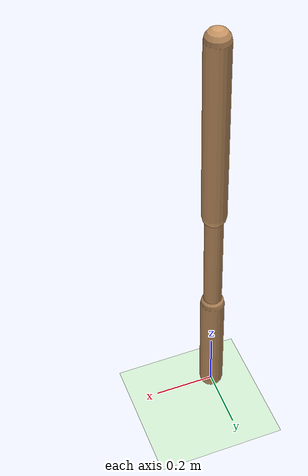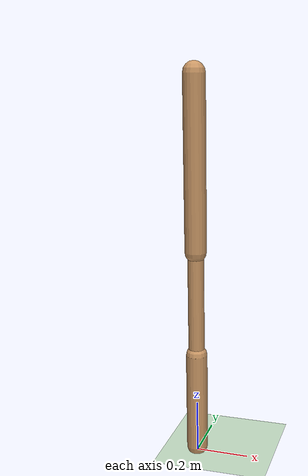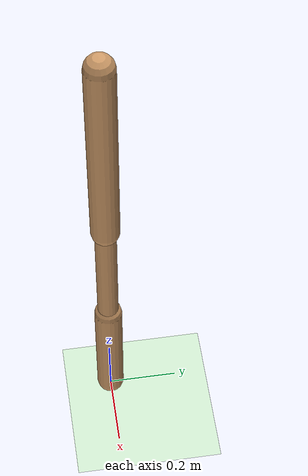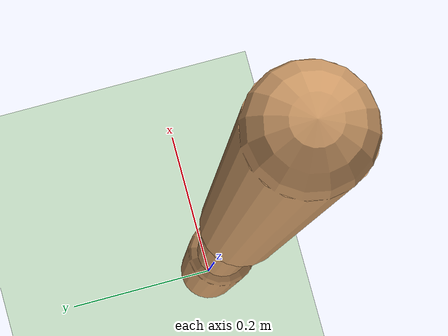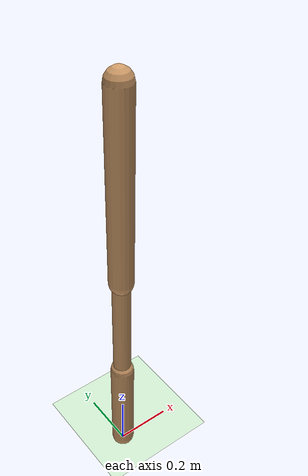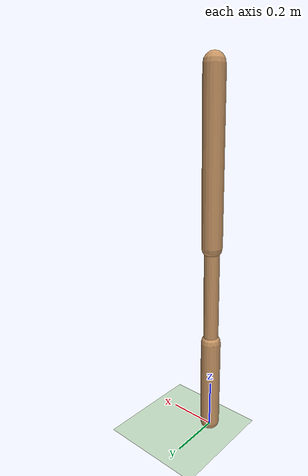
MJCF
<mujoco model="floor">
  <compiler coordinate="global" angle="degree" inertiafromgeom="true"/>
  <option timestep="0.002" integrator="RK4"/>
  <default>
    <default class="/">
      <joint limited="true" armature="0.01" damping="0.1"/>
      <geom contype="1" conaffinity="0" condim="3" rgba="0.80000000000000004 0.59999999999999998 0.40000000000000002 1" friction="1 1 1" density="1000.0"/>
    </default>
    <default class="rabbit/">
      <joint limited="true" armature="0.01" damping="0.1"/>
      <geom contype="1" conaffinity="0" condim="3" rgba="0.80000000000000004 0.59999999999999998 0.40000000000000002 1" friction="1 1 1" density="1000.0"/>
    </default>
  </default>
  <asset>
    <texture name="//unnamed_texture_0" type="skybox" builtin="gradient" rgb1="0.40000000000000002 0.5 0.59999999999999998" rgb2="0 0 0" width="100" height="100"/>
    <texture name="texgeom" type="cube" builtin="flat" rgb1="0.80000000000000004 0.59999999999999998 0.40000000000000002" rgb2="0.80000000000000004 0.59999999999999998 0.40000000000000002" mark="cross" markrgb="1 1 1" random="0.01" width="127" height="1278"/>
    <texture name="texplane" type="2d" builtin="checker" rgb1="0 0 0" rgb2="0.80000000000000004 0.80000000000000004 0.80000000000000004" width="100" height="100"/>
    <material name="MatPlane" class="/" texture="texplane" texrepeat="60 60" specular="1.0" shininess="1.0" reflectance="0.5"/>
    <material name="geom" class="/" texture="texgeom" texuniform="true"/>
    <texture name="rabbit//unnamed_texture_0" type="skybox" builtin="gradient" rgb1="0.40000000000000002 0.5 0.59999999999999998" rgb2="0 0 0" width="100" height="100"/>
    <texture name="rabbit/texgeom" type="cube" builtin="flat" rgb1="0.80000000000000004 0.59999999999999998 0.40000000000000002" rgb2="0.80000000000000004 0.59999999999999998 0.40000000000000002" mark="cross" markrgb="1 1 1" random="0.01" width="127" height="1278"/>
    <texture name="rabbit/texplane" type="2d" builtin="checker" rgb1="0 0 0" rgb2="0.80000000000000004 0.80000000000000004 0.80000000000000004" width="100" height="100"/>
    <material name="rabbit/MatPlane" class="rabbit/" texture="rabbit/texplane" texrepeat="60 60" specular="1.0" shininess="1.0" reflectance="0.5"/>
    <material name="rabbit/geom" class="rabbit/" texture="rabbit/texgeom" texuniform="true"/>
  </asset>
  <worldbody>
    <light name="//unnamed_light_0" class="/" directional="true" pos="0 0 1.3" dir="-0 0 -1.3" cutoff="100.0" exponent="1.0" diffuse="1 1 1" specular="0.10000000000000001 0.10000000000000001 0.10000000000000001"/>
    <geom name="floor" class="/" type="plane" conaffinity="1" condim="3" size="40 40 40" material="MatPlane" rgba="0.80000000000000004 0.90000000000000002 0.80000000000000004 1" friction="2" pos="0 0 0"/>
    <site name="attachment_site" class="/" pos="0 0 0" quat="1 0 0 0"/>
    <body pos="0 0 0" quat="1 0 0 0" name="rabbit/">
      <light name="rabbit//unnamed_light_0" class="rabbit/" directional="true" pos="0 0 1.3" dir="-0 0 -1.3" cutoff="100.0" exponent="1.0" diffuse="1 1 1" specular="0.10000000000000001 0.10000000000000001 0.10000000000000001"/>
      <body name="rabbit/torso" pos="0 0 1.115">
        <camera name="rabbit/track" class="rabbit/" mode="track" pos="0 -3 1" zaxis="0 -1 0.5"/>
        <inertial pos="0 0 1.115" quat="0.70710700000000004 0 0 0.70710700000000004" mass="12.0" diaginertia="1.3300000000000001 1.3300000000000001 0.10000000000000001"/>
        <joint name="rabbit/rootx" class="rabbit/" type="slide" pos="0 0 0" axis="1 0 0" limited="false" stiffness="0.0" armature="0.0" damping="0.0"/>
        <joint name="rabbit/rootz" class="rabbit/" type="slide" pos="0 0 0" axis="0 0 1" limited="false" stiffness="0.0" ref="0.8" armature="0.0" damping="0.0"/>
        <joint name="rabbit/rooty" class="rabbit/" type="hinge" pos="0 0 1.25" axis="0 1 0" limited="false" stiffness="0.0" armature="0.0" damping="0.0"/>
        <geom name="rabbit/torso_geom" class="rabbit/" type="capsule" size="0.040000000000000001" friction="0.90000000000000002" fromto="0 0 1.4299999999999999 0 0 0.80000000000000004"/>
        <body name="rabbit/thigh" pos="0 0 0.59999999999999998">
          <inertial pos="0 0 0.59999999999999998" mass="6.8" diaginertia="0.46999999999999997 0.46999999999999997 0.050000000000000003"/>
          <joint name="rabbit/thigh_joint" class="rabbit/" type="hinge" pos="0 0 0.80000000000000004" axis="0 1 0" range="90 250" ref="-180.0"/>
          <geom name="rabbit/thigh_geom" class="rabbit/" type="capsule" size="0.029999999999999999" friction="0.90000000000000002" fromto="0 0 0.80000000000000004 0 0 0.40000000000000002"/>
          <body name="rabbit/leg" pos="0 0 0.20000000000000001">
            <inertial pos="0 0 0.23999999999999999" mass="3.2" diaginertia="0.20000000000000001 0.20000000000000001 0.02"/>
            <joint name="rabbit/leg_joint" class="rabbit/" type="hinge" pos="0 0 0.40000000000000002" axis="0 1 0" range="0 150"/>
            <geom name="rabbit/leg_geom" class="rabbit/" type="capsule" size="0.040000000000000001" friction="2" fromto="0 0 0.40000000000000002 0 0 0.02"/>
            <site name="rabbit/t1" class="rabbit/" type="box" group="4" size="0.040000000000000001 0.040000000000000001 0.059999999999999998" pos="0 0 0.040000000000000001"/>
          </body>
        </body>
        <body name="rabbit/ca_left" pos="0 0 0.59999999999999998">
          <inertial pos="0 0 0.59999999999999998" mass="6.8" diaginertia="0.46999999999999997 0.46999999999999997 0.050000000000000003"/>
          <joint name="rabbit/thigh_left_joint" class="rabbit/" type="hinge" pos="0 0 0.80000000000000004" axis="0 1 0" range="90 250" ref="-180.0"/>
          <geom name="rabbit/thigh_left_geom" class="rabbit/" type="capsule" size="0.029999999999999999" rgba="0.69999999999999996 0.29999999999999999 0.59999999999999998 1" friction="0.90000000000000002" fromto="0 0 0.80000000000000004 0 0 0.40000000000000002"/>
          <body name="rabbit/leg_left" pos="0 0 0.20000000000000001">
            <inertial pos="0 0 0.23999999999999999" mass="3.2" diaginertia="0.20000000000000001 0.20000000000000001 0.02"/>
            <joint name="rabbit/leg_left_joint" class="rabbit/" type="hinge" pos="0 0 0.40000000000000002" axis="0 1 0" range="0 150"/>
            <geom name="rabbit/leg_left_geom" class="rabbit/" type="capsule" size="0.040000000000000001" rgba="0.69999999999999996 0.29999999999999999 0.59999999999999998 1" friction="2" fromto="0 0 0.40000000000000002 0 0 0.02"/>
            <site name="rabbit/t2" class="rabbit/" type="box" group="4" size="0.040000000000000001 0.040000000000000001 0.059999999999999998" pos="0 0 0.040000000000000001"/>
          </body>
        </body>
      </body>
    </body>
  </worldbody>
  <actuator>
    <motor name="rabbit//unnamed_actuator_0" class="rabbit/" ctrllimited="true" ctrlrange="-4 4" gear="10" joint="rabbit/thigh_joint"/>
    <motor name="rabbit//unnamed_actuator_1" class="rabbit/" ctrllimited="true" ctrlrange="-4 4" gear="10" joint="rabbit/leg_joint"/>
    <motor name="rabbit//unnamed_actuator_2" class="rabbit/" ctrllimited="true" ctrlrange="-4 4" gear="10" joint="rabbit/thigh_left_joint"/>
    <motor name="rabbit//unnamed_actuator_3" class="rabbit/" ctrllimited="true" ctrlrange="-4 4" gear="10" joint="rabbit/leg_left_joint"/>
  </actuator>
  <sensor>
    <touch name="rabbit/s_t1" site="rabbit/t1"/>
    <touch name="rabbit/s_t2" site="rabbit/t2"/>
  </sensor>
</mujoco>
